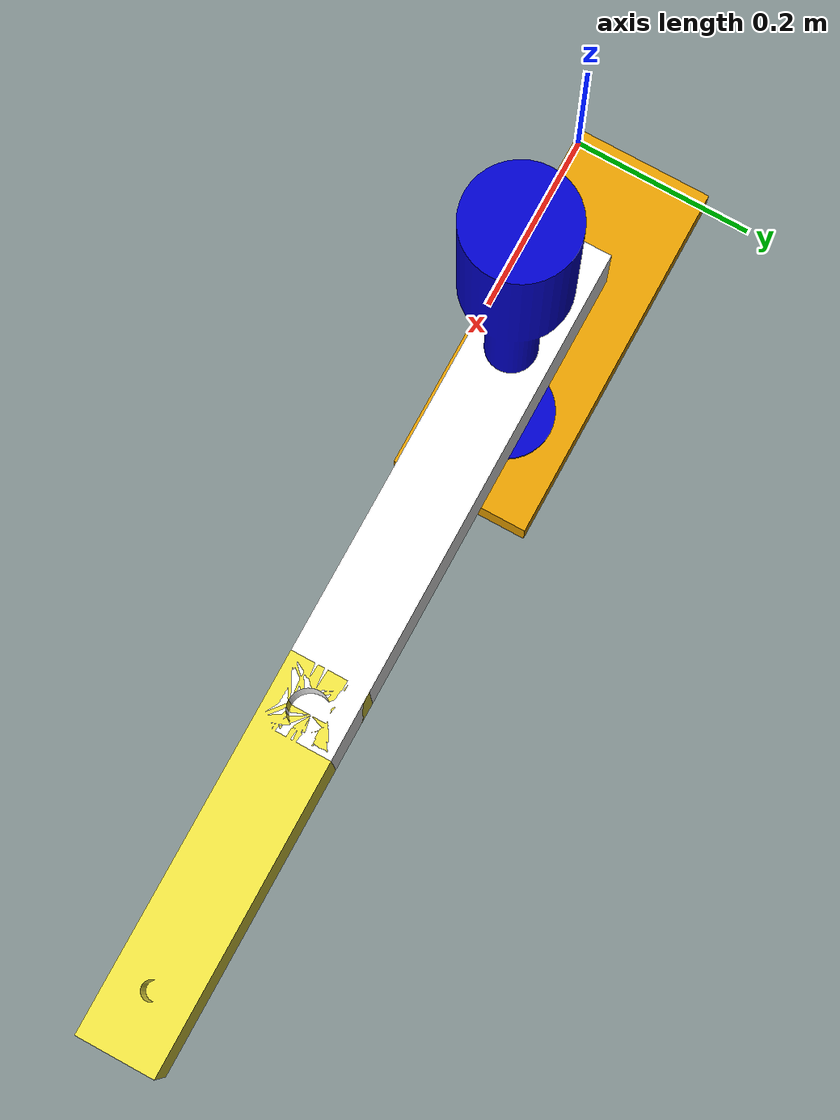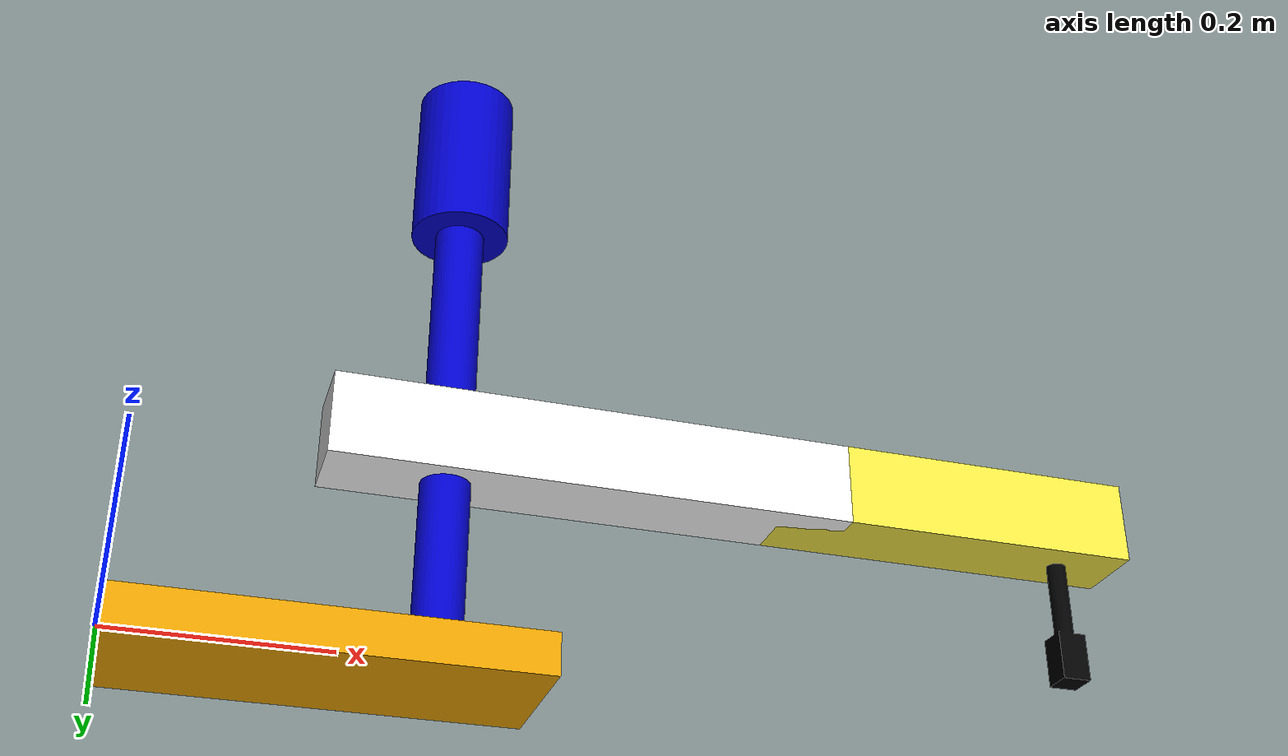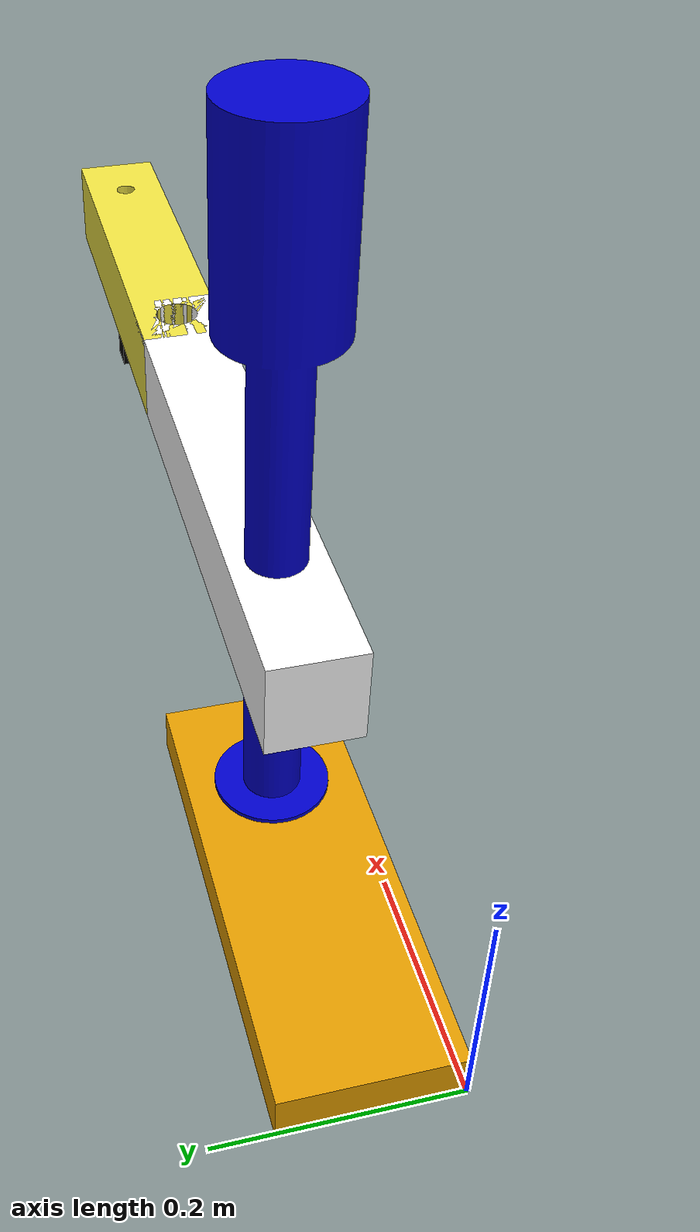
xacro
<?xml version="1.0"?>
<robot xmlns:xacro="http://www.ros.org/wiki/xacro" name="multipleshapes">
    <xacro:arg name="initial_positions_file" default="initial_positions.yaml" />

    <!-- Import multipleshapes urdf file -->
    <xacro:include filename="$(find my_robot_description)/urdf/my_robot.urdf" />

    <!-- Import control_xacro -->
    <xacro:include filename="multipleshapes.ros2_control.xacro" />

    <xacro:multipleshapes_ros2_control name="FakeSystem" initial_positions_file="$(arg initial_positions_file)"/>

</robot>

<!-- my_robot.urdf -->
<robot name="multipleshapes">

  <material name="blue">
    <color rgba="0 0 0.8 1"/>
  </material>
    <material name="black">
    <color rgba="0 0 0 1"/>
  </material>
  <material name="white">
    <color rgba="1 1 1 1"/>
  </material>

  <link name="base_link">
    <visual>
      <geometry>
        <mesh filename="package://my_robot_description/meshes/my_robot/base_link.STL"/>
      </geometry>
    </visual>
    <collision>
      <geometry>
          <mesh filename="package://my_robot_description/meshes/my_robot/base_link.STL" />
      </geometry>
    </collision>
  </link>

  <link name="link1">
    <visual>
      <geometry>
        <mesh filename="package://my_robot_description/meshes/my_robot/link1.STL"/>
      </geometry>
      <origin rpy="0 0 0" xyz="-0.05 -0.05 0"/>
      <material name="blue"/>
    </visual>
    <collision>
      <geometry>
        <mesh filename="package://my_robot_description/meshes/my_robot/link1.STL"/>
      </geometry>
      <origin rpy="0 0 0" xyz="-0.05 -0.05 0"/>
    </collision>
  </link>

  <joint name="base_to_link1" type="revolute">
    <safety_controller k_position="100.0" k_velocity="40.0" soft_lower_limit="-3.0718" soft_upper_limit="3.0718" />
    <axis xyz="0 0 1"/>
    <limit effort="1000.0" lower="-3.14" upper="3.14" velocity="0.5"/>
    <origin rpy="0 0 0" xyz="0.3 0.075 0.01"/>
    <parent link="base_link"/>
    <child link="link1"/>
  </joint>

  <link name="link2">
    <visual>
      <geometry>
        <mesh filename="package://my_robot_description/meshes/my_robot/link2.STL"/>
      </geometry>
      <origin rpy="0 0 0" xyz="0 0 0"/>
      <material name="white"/>
    </visual>
    <collision>
      <geometry>
        <mesh filename="package://my_robot_description/meshes/my_robot/link2.STL"/>
      </geometry>
      <origin rpy="0 0 0" xyz="0 0 0"/>
    </collision>
  </link>

  <joint name="link1_to_link2" type="prismatic">
    <safety_controller k_position="100.0" k_velocity="40.0" soft_lower_limit="-0.13" soft_upper_limit="0.18" />
    <axis xyz="0 0 1"/>
    <parent link="link1"/>
    <child link="link2"/>
    <limit effort="1000.0" lower="-0.14" upper="0.19" velocity="0.5"/>
    <origin rpy="0 0 0" xyz="-0.12 -0.04 0.2"/>
  </joint>

  <link name="link3">
    <visual>
      <geometry>
        <mesh filename="package://my_robot_description/meshes/my_robot/link3.STL"/>
      </geometry>
      <origin rpy="0 0 0" xyz="-0.04 -0.04 0"/>
    </visual>
    <collision>
      <geometry>
        <mesh filename="package://my_robot_description/meshes/my_robot/link3.STL"/>
      </geometry>
      <origin rpy="0 0 0" xyz="-0.04 -0.04 0"/>
    </collision>
  </link>

  <joint name="link2_to_link3" type="revolute">
    <safety_controller k_position="100.0" k_velocity="40.0" soft_lower_limit="-1.4" soft_upper_limit="1.4" />
    <axis xyz="0 0 1"/>
    <limit effort="1000.0" lower="-1.5" upper="1.5" velocity="0.5"/>
    <origin rpy="0 0 0" xyz="0.5 0.04 0"/>
    <parent link="link2"/>
    <child link="link3"/>
  </joint>

  <link name="link4">
    <visual>
      <geometry>
        <mesh filename="package://my_robot_description/meshes/my_robot/link4.STL"/>
      </geometry>
      <origin rpy="0 3.14159 0" xyz="0.015 -0.015 0"/>
      <material name="black"/>
    </visual>
    <collision>
      <geometry>
        <mesh filename="package://my_robot_description/meshes/my_robot/link4.STL"/>
      </geometry>
      <origin rpy="0 3.14159 0" xyz="0.015 -0.015 0"/>
    </collision>
  </link>

  <joint name="link3_to_link4" type="revolute">
    <safety_controller k_position="100.0" k_velocity="40.0" soft_lower_limit="-3.15" soft_upper_limit="3.15" />
    <axis xyz="0 0 1"/>
    <limit effort="1000.0" lower="-3.5" upper="3.5" velocity="0.5"/>
    <origin rpy="0 0 0" xyz="0.28 0 0"/>
    <parent link="link3"/>
    <child link="link4"/>
  </joint>

</robot>
